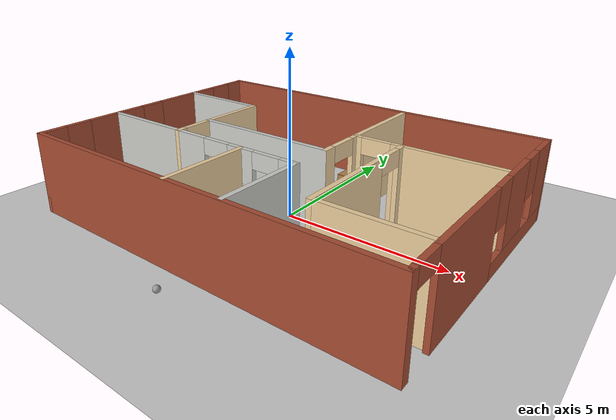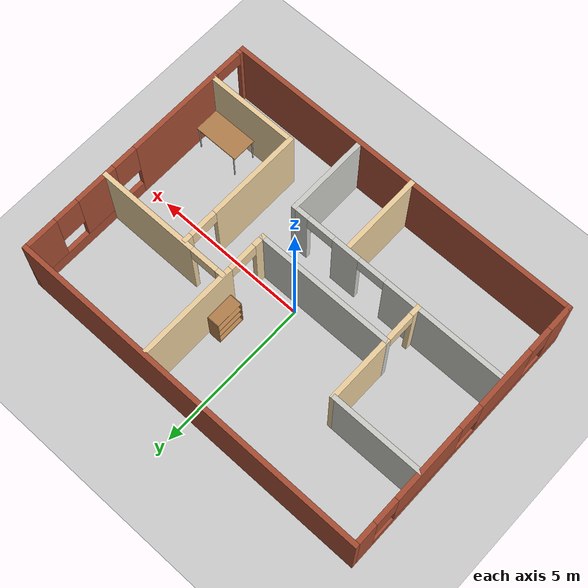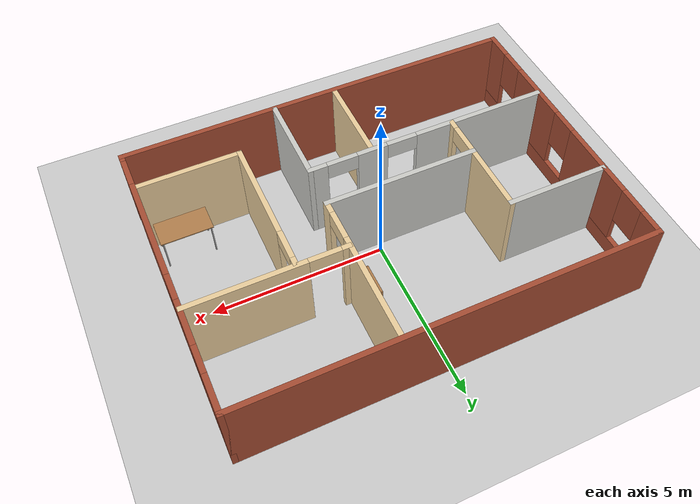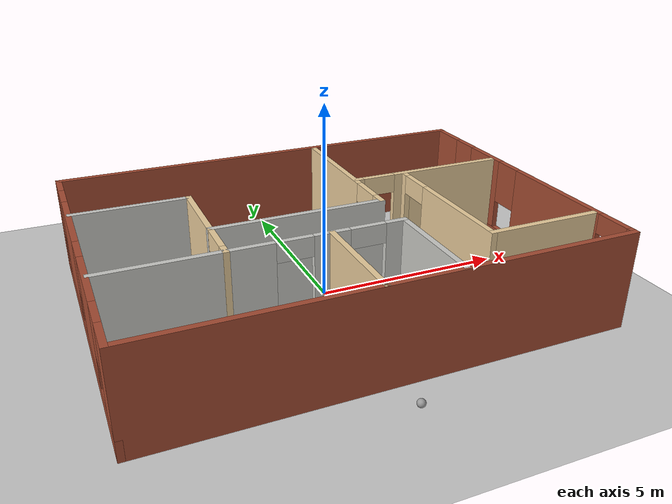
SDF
<sdf version="1.6">
 <world name="default">
  <model name="ground_plane">
   <static>1</static>
   <link name="link">
    <collision name="collision">
     <geometry><plane><normal>0 0 1</normal><size>100 100</size></plane></geometry>
     <surface><friction><ode><mu>100</mu><mu2>50</mu2></ode></friction></surface>
    </collision>
    <visual name="visual">
     <cast_shadows>0</cast_shadows>
     <geometry><plane><normal>0 0 1</normal><size>100 100</size></plane></geometry>
     <material>
      <script><uri>file://media/materials/scripts/gazebo.material</uri><name>Gazebo/Grey</name></script>
     </material>
    </visual>
   </link>
  </model>
  <model name="myplace">
   <link name="Wall_104">
    <pose>3.62551 1.22565 0 0 -0 3.14159</pose>
    <visual name="Wall_104_Visual_0">
     <pose>-0.587051 0 1.25 0 -0 0</pose>
     <geometry><box><size>3.3259 0.15 2.5</size></box></geometry>
     <material>
      <script><uri>file://media/materials/scripts/gazebo.material</uri><name>Gazebo/Grey</name></script>
      <ambient>0.921569 0.807843 0.615686 1</ambient>
     </material>
     <meta><layer>0</layer></meta>
    </visual>
    <collision name="Wall_104_Collision_0">
     <geometry><box><size>3.3259 0.15 2.5</size></box></geometry>
     <pose>-0.587051 0 1.25 0 -0 0</pose>
    </collision>
    <visual name="Wall_104_Visual_1">
     <pose>2.11295 0 1.25 0 -0 0</pose>
     <geometry><box><size>0.274103 0.15 2.5</size></box></geometry>
     <material>
      <script><uri>file://media/materials/scripts/gazebo.material</uri><name>Gazebo/Grey</name></script>
      <ambient>0.921569 0.807843 0.615686 1</ambient>
     </material>
     <meta><layer>0</layer></meta>
    </visual>
    <collision name="Wall_104_Collision_1">
     <geometry><box><size>0.274103 0.15 2.5</size></box></geometry>
     <pose>2.11295 0 1.25 0 -0 0</pose>
    </collision>
    <visual name="Wall_104_Visual_2">
     <pose>1.5259 0 2.25 0 -0 0</pose>
     <geometry><box><size>0.9 0.15 0.5</size></box></geometry>
     <material>
      <script><uri>file://media/materials/scripts/gazebo.material</uri><name>Gazebo/Grey</name></script>
      <ambient>0.921569 0.807843 0.615686 1</ambient>
     </material>
     <meta><layer>0</layer></meta>
    </visual>
    <collision name="Wall_104_Collision_2">
     <geometry><box><size>0.9 0.15 0.5</size></box></geometry>
     <pose>1.5259 0 2.25 0 -0 0</pose>
    </collision>
   </link>
   <link name="Wall_106">
    <pose>2.86292 -0.893742 0 0 0 -1.5708</pose>
    <visual name="Wall_106_Visual_0">
     <pose>-1.98867 0 1.25 0 -0 0</pose>
     <geometry><box><size>0.272657 0.15 2.5</size></box></geometry>
     <material>
      <script><uri>file://media/materials/scripts/gazebo.material</uri><name>Gazebo/Grey</name></script>
      <ambient>0.921569 0.807843 0.615686 1</ambient>
     </material>
     <meta><layer>0</layer></meta>
    </visual>
    <collision name="Wall_106_Collision_0">
     <geometry><box><size>0.272657 0.15 2.5</size></box></geometry>
     <pose>-1.98867 0 1.25 0 -0 0</pose>
    </collision>
    <visual name="Wall_106_Visual_1">
     <pose>0.586329 0 1.25 0 -0 0</pose>
     <geometry><box><size>3.07734 0.15 2.5</size></box></geometry>
     <material>
      <script><uri>file://media/materials/scripts/gazebo.material</uri><name>Gazebo/Grey</name></script>
      <ambient>0.921569 0.807843 0.615686 1</ambient>
     </material>
     <meta><layer>0</layer></meta>
    </visual>
    <collision name="Wall_106_Collision_1">
     <geometry><box><size>3.07734 0.15 2.5</size></box></geometry>
     <pose>0.586329 0 1.25 0 -0 0</pose>
    </collision>
    <visual name="Wall_106_Visual_2">
     <pose>-1.40234 0 2.25 0 -0 0</pose>
     <geometry><box><size>0.9 0.15 0.5</size></box></geometry>
     <material>
      <script><uri>file://media/materials/scripts/gazebo.material</uri><name>Gazebo/Grey</name></script>
      <ambient>0.921569 0.807843 0.615686 1</ambient>
     </material>
     <meta><layer>0</layer></meta>
    </visual>
    <collision name="Wall_106_Collision_2">
     <geometry><box><size>0.9 0.15 0.5</size></box></geometry>
     <pose>-1.40234 0 2.25 0 -0 0</pose>
    </collision>
   </link>
   <link name="Wall_114">
    <collision name="Wall_114_Collision">
     <geometry><box><size>3 0.15 2.5</size></box></geometry>
     <pose>0 0 1.25 0 -0 0</pose>
    </collision>
    <visual name="Wall_114_Visual">
     <pose>0 0 1.25 0 -0 0</pose>
     <geometry><box><size>3 0.15 2.5</size></box></geometry>
     <material>
      <script><uri>file://media/materials/scripts/gazebo.material</uri><name>Gazebo/Grey</name></script>
      <ambient>0.921569 0.807843 0.615686 1</ambient>
     </material>
     <meta><layer>0</layer></meta>
    </visual>
    <pose>4.28792 -2.94374 0 0 -0 0</pose>
   </link>
   <link name="Wall_47">
    <pose>-2.18696 -1.52463 0 0 -0 3.14159</pose>
    <visual name="Wall_47_Visual_0">
     <pose>-3.35943 0 1.25 0 -0 0</pose>
     <geometry><box><size>0.574323 0.15 2.5</size></box></geometry>
     <material>
      <script><uri>file://media/materials/scripts/gazebo.material</uri><name>Gazebo/CeilingTiled</name></script>
      <ambient>0.921569 0.807843 0.615686 1</ambient>
     </material>
     <meta><layer>0</layer></meta>
    </visual>
    <collision name="Wall_47_Collision_0">
     <geometry><box><size>0.574323 0.15 2.5</size></box></geometry>
     <pose>-3.35943 0 1.25 0 -0 0</pose>
    </collision>
    <visual name="Wall_47_Visual_1">
     <pose>-1.72463 0 1.25 0 -0 0</pose>
     <geometry><box><size>0.89527 0.15 2.5</size></box></geometry>
     <material>
      <script><uri>file://media/materials/scripts/gazebo.material</uri><name>Gazebo/CeilingTiled</name></script>
      <ambient>0.921569 0.807843 0.615686 1</ambient>
     </material>
     <meta><layer>0</layer></meta>
    </visual>
    <collision name="Wall_47_Collision_1">
     <geometry><box><size>0.89527 0.15 2.5</size></box></geometry>
     <pose>-1.72463 0 1.25 0 -0 0</pose>
    </collision>
    <visual name="Wall_47_Visual_2">
     <pose>1.6348 0 1.25 0 -0 0</pose>
     <geometry><box><size>4.02359 0.15 2.5</size></box></geometry>
     <material>
      <script><uri>file://media/materials/scripts/gazebo.material</uri><name>Gazebo/CeilingTiled</name></script>
      <ambient>0.921569 0.807843 0.615686 1</ambient>
     </material>
     <meta><layer>0</layer></meta>
    </visual>
    <collision name="Wall_47_Collision_2">
     <geometry><box><size>4.02359 0.15 2.5</size></box></geometry>
     <pose>1.6348 0 1.25 0 -0 0</pose>
    </collision>
    <visual name="Wall_47_Visual_3">
     <pose>-2.62227 0 2.25 0 -0 0</pose>
     <geometry><box><size>0.9 0.15 0.5</size></box></geometry>
     <material>
      <script><uri>file://media/materials/scripts/gazebo.material</uri><name>Gazebo/CeilingTiled</name></script>
      <ambient>0.921569 0.807843 0.615686 1</ambient>
     </material>
     <meta><layer>0</layer></meta>
    </visual>
    <collision name="Wall_47_Collision_3">
     <geometry><box><size>0.9 0.15 0.5</size></box></geometry>
     <pose>-2.62227 0 2.25 0 -0 0</pose>
    </collision>
    <visual name="Wall_47_Visual_4">
     <pose>-0.827 0 2.25 0 -0 0</pose>
     <geometry><box><size>0.9 0.15 0.5</size></box></geometry>
     <material>
      <script><uri>file://media/materials/scripts/gazebo.material</uri><name>Gazebo/CeilingTiled</name></script>
      <ambient>0.921569 0.807843 0.615686 1</ambient>
     </material>
     <meta><layer>0</layer></meta>
    </visual>
    <collision name="Wall_47_Collision_4">
     <geometry><box><size>0.9 0.15 0.5</size></box></geometry>
     <pose>-0.827 0 2.25 0 -0 0</pose>
    </collision>
   </link>
   <link name="Wall_49">
    <pose>-5.82011 0 0 0 0 -1.5708</pose>
    <visual name="Wall_49_Visual_0">
     <pose>-3.85497 0 1.25 0 -0 0</pose>
     <geometry><box><size>0.790055 0.15 2.5</size></box></geometry>
     <material>
      <script><uri>file://media/materials/scripts/gazebo.material</uri><name>Gazebo/Bricks</name></script>
      <ambient>1 1 1 1</ambient>
     </material>
     <meta><layer>0</layer></meta>
    </visual>
    <collision name="Wall_49_Collision_0">
     <geometry><box><size>0.790055 0.15 2.5</size></box></geometry>
     <pose>-3.85497 0 1.25 0 -0 0</pose>
    </collision>
    <visual name="Wall_49_Visual_1">
     <pose>0.395028 0 0.25 0 -0 0</pose>
     <geometry><box><size>7.70995 0.15 0.5</size></box></geometry>
     <material>
      <script><uri>file://media/materials/scripts/gazebo.material</uri><name>Gazebo/Bricks</name></script>
      <ambient>1 1 1 1</ambient>
     </material>
     <meta><layer>0</layer></meta>
    </visual>
    <collision name="Wall_49_Collision_1">
     <geometry><box><size>7.70995 0.15 0.5</size></box></geometry>
     <pose>0.395028 0 0.25 0 -0 0</pose>
    </collision>
    <visual name="Wall_49_Visual_2">
     <pose>-1.4408 0 1.5 0 -0 0</pose>
     <geometry><box><size>2.43829 0.15 2</size></box></geometry>
     <material>
      <script><uri>file://media/materials/scripts/gazebo.material</uri><name>Gazebo/Bricks</name></script>
      <ambient>1 1 1 1</ambient>
     </material>
     <meta><layer>0</layer></meta>
    </visual>
    <collision name="Wall_49_Collision_2">
     <geometry><box><size>2.43829 0.15 2</size></box></geometry>
     <pose>-1.4408 0 1.5 0 -0 0</pose>
    </collision>
    <visual name="Wall_49_Visual_3">
     <pose>1.57623 0 1.5 0 -0 0</pose>
     <geometry><box><size>1.99579 0.15 2</size></box></geometry>
     <material>
      <script><uri>file://media/materials/scripts/gazebo.material</uri><name>Gazebo/Bricks</name></script>
      <ambient>1 1 1 1</ambient>
     </material>
     <meta><layer>0</layer></meta>
    </visual>
    <collision name="Wall_49_Collision_3">
     <geometry><box><size>1.99579 0.15 2</size></box></geometry>
     <pose>1.57623 0 1.5 0 -0 0</pose>
    </collision>
    <visual name="Wall_49_Visual_4">
     <pose>3.81206 0 1.5 0 -0 0</pose>
     <geometry><box><size>0.875873 0.15 2</size></box></geometry>
     <material>
      <script><uri>file://media/materials/scripts/gazebo.material</uri><name>Gazebo/Bricks</name></script>
      <ambient>1 1 1 1</ambient>
     </material>
     <meta><layer>0</layer></meta>
    </visual>
    <collision name="Wall_49_Collision_4">
     <geometry><box><size>0.875873 0.15 2</size></box></geometry>
     <pose>3.81206 0 1.5 0 -0 0</pose>
    </collision>
    <visual name="Wall_49_Visual_5">
     <pose>-3.05994 0 1.9 0 -0 0</pose>
     <geometry><box><size>0.8 0.15 1.2</size></box></geometry>
     <material>
      <script><uri>file://media/materials/scripts/gazebo.material</uri><name>Gazebo/Bricks</name></script>
      <ambient>1 1 1 1</ambient>
     </material>
     <meta><layer>0</layer></meta>
    </visual>
    <collision name="Wall_49_Collision_5">
     <geometry><box><size>0.8 0.15 1.2</size></box></geometry>
     <pose>-3.05994 0 1.9 0 -0 0</pose>
    </collision>
    <visual name="Wall_49_Visual_6">
     <pose>0.17834 0 1.9 0 -0 0</pose>
     <geometry><box><size>0.8 0.15 1.2</size></box></geometry>
     <material>
      <script><uri>file://media/materials/scripts/gazebo.material</uri><name>Gazebo/Bricks</name></script>
      <ambient>1 1 1 1</ambient>
     </material>
     <meta><layer>0</layer></meta>
    </visual>
    <collision name="Wall_49_Collision_6">
     <geometry><box><size>0.8 0.15 1.2</size></box></geometry>
     <pose>0.17834 0 1.9 0 -0 0</pose>
    </collision>
    <visual name="Wall_49_Visual_7">
     <pose>2.97413 0 1.9 0 -0 0</pose>
     <geometry><box><size>0.8 0.15 1.2</size></box></geometry>
     <material>
      <script><uri>file://media/materials/scripts/gazebo.material</uri><name>Gazebo/Bricks</name></script>
      <ambient>1 1 1 1</ambient>
     </material>
     <meta><layer>0</layer></meta>
    </visual>
    <collision name="Wall_49_Collision_7">
     <geometry><box><size>0.8 0.15 1.2</size></box></geometry>
     <pose>2.97413 0 1.9 0 -0 0</pose>
    </collision>
   </link>
   <link name="Wall_53">
    <pose>5.82011 0 0 0 -0 1.5708</pose>
    <visual name="Wall_53_Visual_0">
     <pose>-4.11865 0 1.25 0 -0 0</pose>
     <geometry><box><size>0.262693 0.15 2.5</size></box></geometry>
     <material>
      <script><uri>file://media/materials/scripts/gazebo.material</uri><name>Gazebo/Bricks</name></script>
      <ambient>1 1 1 1</ambient>
     </material>
     <meta><layer>0</layer></meta>
    </visual>
    <collision name="Wall_53_Collision_0">
     <geometry><box><size>0.262693 0.15 2.5</size></box></geometry>
     <pose>-4.11865 0 1.25 0 -0 0</pose>
    </collision>
    <visual name="Wall_53_Visual_1">
     <pose>-1.48084 0 1.25 0 -0 0</pose>
     <geometry><box><size>3.21294 0.15 2.5</size></box></geometry>
     <material>
      <script><uri>file://media/materials/scripts/gazebo.material</uri><name>Gazebo/Bricks</name></script>
      <ambient>1 1 1 1</ambient>
     </material>
     <meta><layer>0</layer></meta>
    </visual>
    <collision name="Wall_53_Collision_1">
     <geometry><box><size>3.21294 0.15 2.5</size></box></geometry>
     <pose>-1.48084 0 1.25 0 -0 0</pose>
    </collision>
    <visual name="Wall_53_Visual_2">
     <pose>2.18782 0 0.25 0 -0 0</pose>
     <geometry><box><size>4.12437 0.15 0.5</size></box></geometry>
     <material>
      <script><uri>file://media/materials/scripts/gazebo.material</uri><name>Gazebo/Bricks</name></script>
      <ambient>1 1 1 1</ambient>
     </material>
     <meta><layer>0</layer></meta>
    </visual>
    <collision name="Wall_53_Collision_2">
     <geometry><box><size>4.12437 0.15 0.5</size></box></geometry>
     <pose>2.18782 0 0.25 0 -0 0</pose>
    </collision>
    <visual name="Wall_53_Visual_3">
     <pose>1.61177 0 1.5 0 -0 0</pose>
     <geometry><box><size>1.37227 0.15 2</size></box></geometry>
     <material>
      <script><uri>file://media/materials/scripts/gazebo.material</uri><name>Gazebo/Bricks</name></script>
      <ambient>1 1 1 1</ambient>
     </material>
     <meta><layer>0</layer></meta>
    </visual>
    <collision name="Wall_53_Collision_3">
     <geometry><box><size>1.37227 0.15 2</size></box></geometry>
     <pose>1.61177 0 1.5 0 -0 0</pose>
    </collision>
    <visual name="Wall_53_Visual_4">
     <pose>3.67395 0 1.5 0 -0 0</pose>
     <geometry><box><size>1.1521 0.15 2</size></box></geometry>
     <material>
      <script><uri>file://media/materials/scripts/gazebo.material</uri><name>Gazebo/Bricks</name></script>
      <ambient>1 1 1 1</ambient>
     </material>
     <meta><layer>0</layer></meta>
    </visual>
    <collision name="Wall_53_Collision_4">
     <geometry><box><size>1.1521 0.15 2</size></box></geometry>
     <pose>3.67395 0 1.5 0 -0 0</pose>
    </collision>
    <visual name="Wall_53_Visual_5">
     <pose>0.525634 0 1.9 0 -0 0</pose>
     <geometry><box><size>0.8 0.15 1.2</size></box></geometry>
     <material>
      <script><uri>file://media/materials/scripts/gazebo.material</uri><name>Gazebo/Bricks</name></script>
      <ambient>1 1 1 1</ambient>
     </material>
     <meta><layer>0</layer></meta>
    </visual>
    <collision name="Wall_53_Collision_5">
     <geometry><box><size>0.8 0.15 1.2</size></box></geometry>
     <pose>0.525634 0 1.9 0 -0 0</pose>
    </collision>
    <visual name="Wall_53_Visual_6">
     <pose>2.6979 0 1.9 0 -0 0</pose>
     <geometry><box><size>0.8 0.15 1.2</size></box></geometry>
     <material>
      <script><uri>file://media/materials/scripts/gazebo.material</uri><name>Gazebo/Bricks</name></script>
      <ambient>1 1 1 1</ambient>
     </material>
     <meta><layer>0</layer></meta>
    </visual>
    <collision name="Wall_53_Collision_6">
     <geometry><box><size>0.8 0.15 1.2</size></box></geometry>
     <pose>2.6979 0 1.9 0 -0 0</pose>
    </collision>
    <visual name="Wall_53_Visual_7">
     <pose>-3.53731 0 2.25 0 -0 0</pose>
     <geometry><box><size>0.9 0.15 0.5</size></box></geometry>
     <material>
      <script><uri>file://media/materials/scripts/gazebo.material</uri><name>Gazebo/Bricks</name></script>
      <ambient>1 1 1 1</ambient>
     </material>
     <meta><layer>0</layer></meta>
    </visual>
    <collision name="Wall_53_Collision_7">
     <geometry><box><size>0.9 0.15 0.5</size></box></geometry>
     <pose>-3.53731 0 2.25 0 -0 0</pose>
    </collision>
   </link>
   <link name="Wall_63">
    <pose>-2.92989 0.111193 0 0 0 -1.5708</pose>
    <visual name="Wall_63_Visual_0">
     <pose>-0.619935 0 1.25 0 -0 0</pose>
     <geometry><box><size>2.18258 0.15 2.5</size></box></geometry>
     <material>
      <script><uri>file://media/materials/scripts/gazebo.material</uri><name>Gazebo/Grey</name></script>
      <ambient>0.921569 0.807843 0.615686 1</ambient>
     </material>
     <meta><layer>0</layer></meta>
    </visual>
    <collision name="Wall_63_Collision_0">
     <geometry><box><size>2.18258 0.15 2.5</size></box></geometry>
     <pose>-0.619935 0 1.25 0 -0 0</pose>
    </collision>
    <visual name="Wall_63_Visual_1">
     <pose>1.54129 0 1.25 0 -0 0</pose>
     <geometry><box><size>0.33987 0.15 2.5</size></box></geometry>
     <material>
      <script><uri>file://media/materials/scripts/gazebo.material</uri><name>Gazebo/Grey</name></script>
      <ambient>0.921569 0.807843 0.615686 1</ambient>
     </material>
     <meta><layer>0</layer></meta>
    </visual>
    <collision name="Wall_63_Collision_1">
     <geometry><box><size>0.33987 0.15 2.5</size></box></geometry>
     <pose>1.54129 0 1.25 0 -0 0</pose>
    </collision>
    <visual name="Wall_63_Visual_2">
     <pose>0.921354 0 2.25 0 -0 0</pose>
     <geometry><box><size>0.9 0.15 0.5</size></box></geometry>
     <material>
      <script><uri>file://media/materials/scripts/gazebo.material</uri><name>Gazebo/Grey</name></script>
      <ambient>0.921569 0.807843 0.615686 1</ambient>
     </material>
     <meta><layer>0</layer></meta>
    </visual>
    <collision name="Wall_63_Collision_2">
     <geometry><box><size>0.9 0.15 0.5</size></box></geometry>
     <pose>0.921354 0 2.25 0 -0 0</pose>
    </collision>
   </link>
   <link name="Wall_65">
    <collision name="Wall_65_Collision">
     <geometry><box><size>2.75 0.15 2.5</size></box></geometry>
     <pose>0 0 1.25 0 -0 0</pose>
    </collision>
    <visual name="Wall_65_Visual">
     <pose>0 0 1.25 0 -0 0</pose>
     <geometry><box><size>2.75 0.15 2.5</size></box></geometry>
     <material>
      <script><uri>file://media/materials/scripts/gazebo.material</uri><name>Gazebo/CeilingTiled</name></script>
      <ambient>0.921569 0.807843 0.615686 1</ambient>
     </material>
     <meta><layer>0</layer></meta>
    </visual>
    <pose>1.38463 -2.82463 0 0 0 -1.5708</pose>
   </link>
   <link name="Wall_68">
    <collision name="Wall_68_Collision">
     <geometry><box><size>2.75 0.15 2.5</size></box></geometry>
     <pose>0 0 1.25 0 -0 0</pose>
    </collision>
    <visual name="Wall_68_Visual">
     <pose>0 0 1.25 0 -0 0</pose>
     <geometry><box><size>2.75 0.15 2.5</size></box></geometry>
     <material>
      <script><uri>file://media/materials/scripts/gazebo.material</uri><name>Gazebo/Grey</name></script>
      <ambient>0.921569 0.807843 0.615686 1</ambient>
     </material>
     <meta><layer>0</layer></meta>
    </visual>
    <pose>-0.456438 -2.86618 0 0 0 -1.5708</pose>
   </link>
   <link name="Wall_71">
    <collision name="Wall_71_Collision">
     <geometry><box><size>4.5 0.15 2.5</size></box></geometry>
     <pose>0 0 1.25 0 -0 0</pose>
    </collision>
    <visual name="Wall_71_Visual">
     <pose>0 0 1.25 0 -0 0</pose>
     <geometry><box><size>4.5 0.15 2.5</size></box></geometry>
     <material>
      <script><uri>file://media/materials/scripts/gazebo.material</uri><name>Gazebo/CeilingTiled</name></script>
      <ambient>0.921569 0.807843 0.615686 1</ambient>
     </material>
     <meta><layer>0</layer></meta>
    </visual>
    <pose>-0.757802 -0.286519 0 0 -0 3.14159</pose>
   </link>
   <link name="Wall_78">
    <collision name="Wall_78_Collision">
     <geometry><box><size>3 0.15 2.5</size></box></geometry>
     <pose>0 0 1.25 0 -0 0</pose>
    </collision>
    <visual name="Wall_78_Visual">
     <pose>0 0 1.25 0 -0 0</pose>
     <geometry><box><size>3 0.15 2.5</size></box></geometry>
     <material>
      <script><uri>file://media/materials/scripts/gazebo.material</uri><name>Gazebo/CeilingTiled</name></script>
      <ambient>0.921569 0.807843 0.615686 1</ambient>
     </material>
     <meta><layer>0</layer></meta>
    </visual>
    <pose>-4.35489 1.74738 0 0 -0 3.14159</pose>
   </link>
   <link name="Wall_80">
    <collision name="Wall_80_Collision">
     <geometry><box><size>11.7902 0.15 2.5</size></box></geometry>
     <pose>0 0 1.25 0 -0 0</pose>
    </collision>
    <visual name="Wall_80_Visual">
     <pose>0 0 1.25 0 -0 0</pose>
     <geometry><box><size>11.7902 0.15 2.5</size></box></geometry>
     <material>
      <script><uri>file://media/materials/scripts/gazebo.material</uri><name>Gazebo/Bricks</name></script>
      <ambient>1 1 1 1</ambient>
     </material>
     <meta><layer>0</layer></meta>
    </visual>
    <pose>0 4.175 0 0 -0 0</pose>
   </link>
   <link name="Wall_82">
    <collision name="Wall_82_Collision">
     <geometry><box><size>11.7902 0.15 2.5</size></box></geometry>
     <pose>0 0 1.25 0 -0 0</pose>
    </collision>
    <visual name="Wall_82_Visual">
     <pose>0 0 1.25 0 -0 0</pose>
     <geometry><box><size>11.7902 0.15 2.5</size></box></geometry>
     <material>
      <script><uri>file://media/materials/scripts/gazebo.material</uri><name>Gazebo/Bricks</name></script>
      <ambient>1 1 1 1</ambient>
     </material>
     <meta><layer>0</layer></meta>
    </visual>
    <pose>0 -4.175 0 0 -0 0</pose>
   </link>
   <link name="Wall_89">
    <pose>1.4172 1.88848 0 0 -0 1.5708</pose>
    <visual name="Wall_89_Visual_0">
     <pose>-2.03994 0 1.25 0 -0 0</pose>
     <geometry><box><size>0.42012 0.15 2.5</size></box></geometry>
     <material>
      <script><uri>file://media/materials/scripts/gazebo.material</uri><name>Gazebo/Grey</name></script>
      <ambient>0.921569 0.807843 0.615686 1</ambient>
     </material>
     <meta><layer>0</layer></meta>
    </visual>
    <collision name="Wall_89_Collision_0">
     <geometry><box><size>0.42012 0.15 2.5</size></box></geometry>
     <pose>-2.03994 0 1.25 0 -0 0</pose>
    </collision>
    <visual name="Wall_89_Visual_1">
     <pose>0.66006 0 1.25 0 -0 0</pose>
     <geometry><box><size>3.17988 0.15 2.5</size></box></geometry>
     <material>
      <script><uri>file://media/materials/scripts/gazebo.material</uri><name>Gazebo/Grey</name></script>
      <ambient>0.921569 0.807843 0.615686 1</ambient>
     </material>
     <meta><layer>0</layer></meta>
    </visual>
    <collision name="Wall_89_Collision_1">
     <geometry><box><size>3.17988 0.15 2.5</size></box></geometry>
     <pose>0.66006 0 1.25 0 -0 0</pose>
    </collision>
    <visual name="Wall_89_Visual_2">
     <pose>-1.37988 0 2.25 0 -0 0</pose>
     <geometry><box><size>0.9 0.15 0.5</size></box></geometry>
     <material>
      <script><uri>file://media/materials/scripts/gazebo.material</uri><name>Gazebo/Grey</name></script>
      <ambient>0.921569 0.807843 0.615686 1</ambient>
     </material>
     <meta><layer>0</layer></meta>
    </visual>
    <collision name="Wall_89_Collision_2">
     <geometry><box><size>0.9 0.15 0.5</size></box></geometry>
     <pose>-1.37988 0 2.25 0 -0 0</pose>
    </collision>
   </link>
   <static>1</static>
  </model>
  <model name="bookshelf_clone_0">
   <static>1</static>
   <link name="link">
    <inertial><mass>1</mass></inertial>
    <collision name="back">
     <pose>0 0.005 0.6 0 -0 0</pose>
     <geometry><box><size>0.9 0.01 1.2</size></box></geometry>
    </collision>
    <visual name="visual1">
     <pose>0 0.005 0.6 0 -0 0</pose>
     <geometry><box><size>0.9 0.01 1.2</size></box></geometry>
     <material>
      <script><uri>file://media/materials/scripts/gazebo.material</uri><name>Gazebo/Wood</name></script>
     </material>
    </visual>
    <collision name="left_side">
     <pose>0.45 -0.195 0.6 0 -0 0</pose>
     <geometry><box><size>0.02 0.4 1.2</size></box></geometry>
    </collision>
    <visual name="visual2">
     <pose>0.45 -0.195 0.6 0 -0 0</pose>
     <geometry><box><size>0.02 0.4 1.2</size></box></geometry>
     <material>
      <script><uri>file://media/materials/scripts/gazebo.material</uri><name>Gazebo/Wood</name></script>
     </material>
    </visual>
    <collision name="right_side">
     <pose>-0.45 -0.195 0.6 0 -0 0</pose>
     <geometry><box><size>0.02 0.4 1.2</size></box></geometry>
    </collision>
    <visual name="visual3">
     <pose>-0.45 -0.195 0.6 0 -0 0</pose>
     <geometry><box><size>0.02 0.4 1.2</size></box></geometry>
     <material>
      <script><uri>file://media/materials/scripts/gazebo.material</uri><name>Gazebo/Wood</name></script>
     </material>
    </visual>
    <collision name="bottom">
     <pose>0 -0.195 0.03 0 -0 0</pose>
     <geometry><box><size>0.88 0.4 0.06</size></box></geometry>
    </collision>
    <visual name="visual4">
     <pose>0 -0.195 0.03 0 -0 0</pose>
     <geometry><box><size>0.88 0.4 0.06</size></box></geometry>
     <material>
      <script><uri>file://media/materials/scripts/gazebo.material</uri><name>Gazebo/Wood</name></script>
     </material>
    </visual>
    <collision name="top">
     <pose>0 -0.195 1.19 0 -0 0</pose>
     <geometry><box><size>0.88 0.4 0.02</size></box></geometry>
    </collision>
    <visual name="visual5">
     <pose>0 -0.195 1.19 0 -0 0</pose>
     <geometry><box><size>0.88 0.4 0.02</size></box></geometry>
     <material>
      <script><uri>file://media/materials/scripts/gazebo.material</uri><name>Gazebo/Wood</name></script>
     </material>
    </visual>
    <collision name="low_shelf">
     <pose>0 -0.195 0.43 0 -0 0</pose>
     <geometry><box><size>0.88 0.4 0.02</size></box></geometry>
    </collision>
    <visual name="visual6">
     <pose>0 -0.195 0.43 0 -0 0</pose>
     <geometry><box><size>0.88 0.4 0.02</size></box></geometry>
     <material>
      <script><uri>file://media/materials/scripts/gazebo.material</uri><name>Gazebo/Wood</name></script>
     </material>
    </visual>
    <collision name="high_shelf">
     <pose>0 -0.195 0.8 0 -0 0</pose>
     <geometry><box><size>0.88 0.4 0.02</size></box></geometry>
    </collision>
    <visual name="visual7">
     <pose>0 -0.195 0.8 0 -0 0</pose>
     <geometry><box><size>0.88 0.4 0.02</size></box></geometry>
     <material>
      <script><uri>file://media/materials/scripts/gazebo.material</uri><name>Gazebo/Wood</name></script>
     </material>
    </visual>
   </link>
   <pose>1.30003 1.59548 0 0 0 -1.57119</pose>
  </model>
  <model name="table_clone">
   <static>1</static>
   <link name="link">
    <collision name="surface">
     <pose>0 0 1 0 -0 0</pose>
     <geometry><box><size>1.5 0.8 0.03</size></box></geometry>
     <surface><friction><ode><mu>0.6</mu><mu2>0.6</mu2></ode></friction></surface>
    </collision>
    <visual name="visual1">
     <pose>0 0 1 0 -0 0</pose>
     <geometry><box><size>1.5 0.8 0.03</size></box></geometry>
     <material>
      <script><uri>file://media/materials/scripts/gazebo.material</uri><name>Gazebo/Wood</name></script>
     </material>
    </visual>
    <collision name="front_left_leg">
     <pose>0.68 0.38 0.5 0 -0 0</pose>
     <geometry><cylinder><radius>0.02</radius><length>1</length></cylinder></geometry>
    </collision>
    <visual name="front_left_leg">
     <pose>0.68 0.38 0.5 0 -0 0</pose>
     <geometry><cylinder><radius>0.02</radius><length>1</length></cylinder></geometry>
     <material>
      <script><uri>file://media/materials/scripts/gazebo.material</uri><name>Gazebo/Grey</name></script>
     </material>
    </visual>
    <collision name="front_right_leg">
     <pose>0.68 -0.38 0.5 0 -0 0</pose>
     <geometry><cylinder><radius>0.02</radius><length>1</length></cylinder></geometry>
    </collision>
    <visual name="front_right_leg">
     <pose>0.68 -0.38 0.5 0 -0 0</pose>
     <geometry><cylinder><radius>0.02</radius><length>1</length></cylinder></geometry>
     <material>
      <script><uri>file://media/materials/scripts/gazebo.material</uri><name>Gazebo/Grey</name></script>
     </material>
    </visual>
    <collision name="back_right_leg">
     <pose>-0.68 -0.38 0.5 0 -0 0</pose>
     <geometry><cylinder><radius>0.02</radius><length>1</length></cylinder></geometry>
    </collision>
    <visual name="back_right_leg">
     <pose>-0.68 -0.38 0.5 0 -0 0</pose>
     <geometry><cylinder><radius>0.02</radius><length>1</length></cylinder></geometry>
     <material>
      <script><uri>file://media/materials/scripts/gazebo.material</uri><name>Gazebo/Grey</name></script>
     </material>
    </visual>
    <collision name="back_left_leg">
     <pose>-0.68 0.38 0.5 0 -0 0</pose>
     <geometry><cylinder><radius>0.02</radius><length>1</length></cylinder></geometry>
    </collision>
    <visual name="back_left_leg">
     <pose>-0.68 0.38 0.5 0 -0 0</pose>
     <geometry><cylinder><radius>0.02</radius><length>1</length></cylinder></geometry>
     <material>
      <script><uri>file://media/materials/scripts/gazebo.material</uri><name>Gazebo/Grey</name></script>
     </material>
    </visual>
   </link>
   <pose>4.9 -2.4 0 0 -0 0</pose>
  </model>
  <model name="my_ball">
   <link name="link_0">
    <inertial>
     <mass>1</mass>
     <inertia><ixx>0.1</ixx><ixy>0</ixy><ixz>0</ixz><iyy>0.1</iyy><iyz>0</iyz><izz>0.1</izz></inertia>
    </inertial>
    <visual name="visual">
     <geometry><sphere><radius>0.1</radius></sphere></geometry>
     <material>
      <lighting>1</lighting>
      <script><uri>file://media/materials/scripts/gazebo.material</uri><name>Gazebo/Grey</name></script>
      <ambient>1 1 1 1</ambient>
      <diffuse>1 1 1 1</diffuse>
      <specular>1 1 1 1</specular>
      <emissive>1 1 1 1</emissive>
      <shader type="vertex"><normal_map>__default__</normal_map></shader>
     </material>
    </visual>
    <collision name="collision">
     <geometry><sphere><radius>0.1</radius></sphere></geometry>
     <surface>
      <friction>
       <ode><mu>1</mu><mu2>1</mu2><fdir1>0 0 0</fdir1><slip1>0</slip1><slip2>0</slip2></ode>
       <torsional>
        <coefficient>1</coefficient>
        <patch_radius>0</patch_radius>
        <surface_radius>0</surface_radius>
        <use_patch_radius>1</use_patch_radius>
        <ode><slip>0</slip></ode>
       </torsional>
      </friction>
      <bounce><restitution_coefficient>0</restitution_coefficient><threshold>1e+06</threshold></bounce>
      <contact>
       <collide_without_contact>0</collide_without_contact>
       <collide_without_contact_bitmask>1</collide_without_contact_bitmask>
       <collide_bitmask>1</collide_bitmask>
       <ode>
        <soft_cfm>0</soft_cfm>
        <soft_erp>0.2</soft_erp>
        <kp>1e+13</kp>
        <kd>1</kd>
        <max_vel>0.01</max_vel>
        <min_depth>0</min_depth>
       </ode>
       <bullet>
        <split_impulse>1</split_impulse>
        <split_impulse_penetration_threshold>-0.01</split_impulse_penetration_threshold>
        <soft_cfm>0</soft_cfm>
        <soft_erp>0.2</soft_erp>
        <kp>1e+13</kp>
        <kd>1</kd>
       </bullet>
      </contact>
     </surface>
    </collision>
   </link>
   <static>0</static>
   <pose>0 -5 0.1 0 -0 0</pose>
  </model>
 </world>
</sdf>
